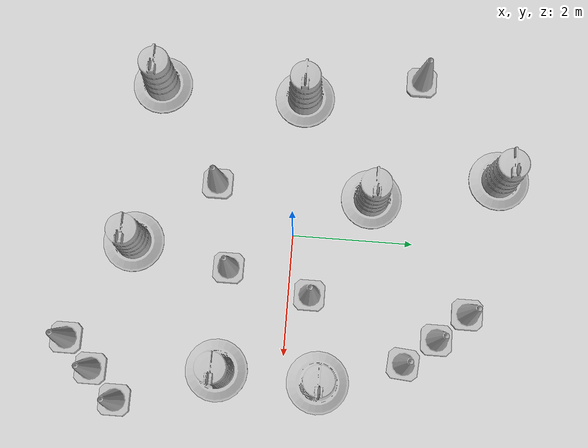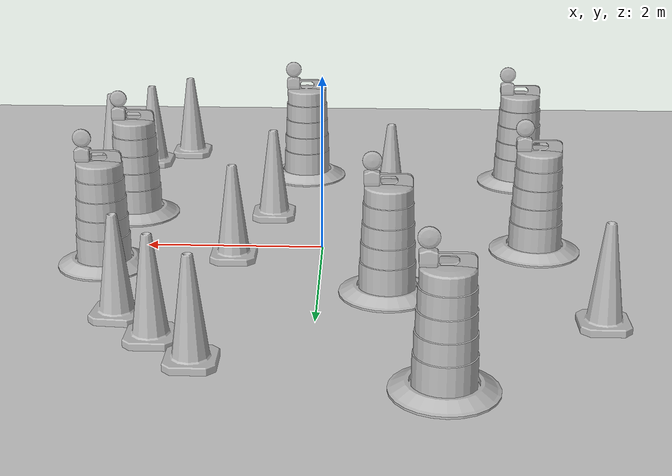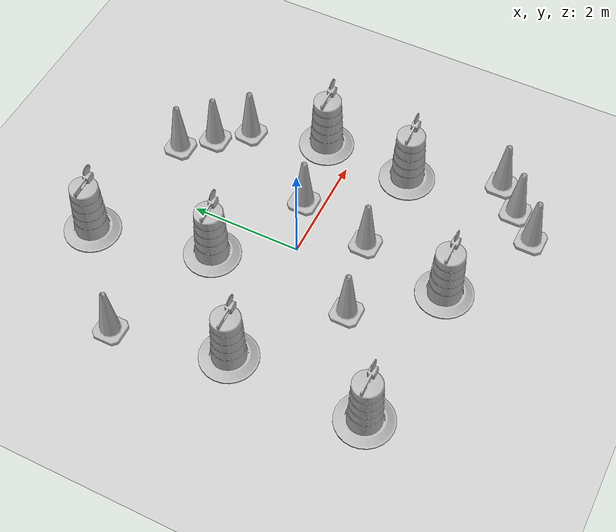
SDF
<sdf version="1.7">
 <world name="default">
  <light name="sun" type="directional">
   <pose>0 0 10 0 -0 0</pose>
   <diffuse>0.8 0.8 0.8 1</diffuse>
   <specular>0.2 0.2 0.2 1</specular>
   <attenuation>
    <range>1000</range>
    <constant>0.9</constant>
    <linear>0.01</linear>
    <quadratic>0.001</quadratic>
   </attenuation>
   <direction>-0.5 0.1 -0.9</direction>
   <spot><inner_angle>0</inner_angle><outer_angle>0</outer_angle><falloff>0</falloff></spot>
  </light>
  <model name="ground_plane">
   <static>1</static>
   <link name="link">
    <collision name="collision">
     <geometry><plane><normal>0 0 1</normal><size>100 100</size></plane></geometry>
     <surface>
      <contact><collide_bitmask>65535</collide_bitmask></contact>
      <friction><ode><mu>100</mu><mu2>50</mu2></ode></friction>
     </surface>
    </collision>
    <visual name="visual">
     <cast_shadows>0</cast_shadows>
     <geometry><plane><normal>0 0 1</normal><size>100 100</size></plane></geometry>
     <material>
      <script><uri>file://media/materials/scripts/gazebo.material</uri><name>Gazebo/Grey</name></script>
     </material>
    </visual>
   </link>
  </model>
  <gravity>0 0 -9.8</gravity>
  <magnetic_field>6e-06 2.3e-05 -4.2e-05</magnetic_field>
  <atmosphere type="adiabatic"/>
  <physics type="ode">
   <max_step_size>0.001</max_step_size>
   <real_time_factor>1</real_time_factor>
   <real_time_update_rate>1000</real_time_update_rate>
  </physics>
  <scene><ambient>0.4 0.4 0.4 1</ambient><background>0.7 0.7 0.7 1</background><shadows>1</shadows></scene>
  <audio><device>default</device></audio>
  <spherical_coordinates>
   <surface_model>EARTH_WGS84</surface_model>
   <latitude_deg>0</latitude_deg>
   <longitude_deg>0</longitude_deg>
   <elevation>0</elevation>
   <heading_deg>0</heading_deg>
  </spherical_coordinates>
  <model name="Construction Cone">
   <link name="link">
    <collision name="collision">
     <geometry>
      <mesh><scale>10 10 10</scale><uri>model://construction_cone/meshes/construction_cone.dae</uri></mesh>
     </geometry>
    </collision>
    <visual name="visual">
     <geometry>
      <mesh><scale>10 10 10</scale><uri>model://construction_cone/meshes/construction_cone.dae</uri></mesh>
     </geometry>
    </visual>
    <inertial>
     <inertia><ixx>1</ixx><ixy>0</ixy><ixz>0</ixz><iyy>1</iyy><iyz>0</iyz><izz>1</izz></inertia>
     <mass>1</mass>
    </inertial>
   </link>
   <pose>1.98583 1.94841 -0 0 0 -0.086739</pose>
  </model>
  <model name="Construction Barrel">
   <link name="link">
    <inertial>
     <pose>0 0 0.4 0 -0 0</pose>
     <mass>500</mass>
     <inertia><ixx>51.2096</ixx><iyy>51.2096</iyy><izz>25</izz><ixy>0</ixy><ixz>0</ixz><iyz>0</iyz></inertia>
    </inertial>
    <collision name="collision">
     <geometry><mesh><uri>model://construction_barrel/meshes/construction_barrel.dae</uri></mesh></geometry>
    </collision>
    <visual name="visual">
     <geometry><mesh><uri>model://construction_barrel/meshes/construction_barrel.dae</uri></mesh></geometry>
    </visual>
   </link>
   <pose>2.31131 -1.06782 -1e-06 3e-06 7e-06 -3.1e-05</pose>
  </model>
  <model name="Construction Barrel_0">
   <link name="link">
    <inertial>
     <pose>0 0 0.4 0 -0 0</pose>
     <mass>500</mass>
     <inertia><ixx>51.2096</ixx><iyy>51.2096</iyy><izz>25</izz><ixy>0</ixy><ixz>0</ixz><iyz>0</iyz></inertia>
    </inertial>
    <collision name="collision">
     <geometry><mesh><uri>model://construction_barrel/meshes/construction_barrel.dae</uri></mesh></geometry>
    </collision>
    <visual name="visual">
     <geometry><mesh><uri>model://construction_barrel/meshes/construction_barrel.dae</uri></mesh></geometry>
    </visual>
   </link>
   <pose>0.300751 -2.64057 -0 0 0 -2.3e-05</pose>
  </model>
  <model name="Construction Barrel_1">
   <link name="link">
    <inertial>
     <pose>0 0 0.4 0 -0 0</pose>
     <mass>500</mass>
     <inertia><ixx>51.2096</ixx><iyy>51.2096</iyy><izz>25</izz><ixy>0</ixy><ixz>0</ixz><iyz>0</iyz></inertia>
    </inertial>
    <collision name="collision">
     <geometry><mesh><uri>model://construction_barrel/meshes/construction_barrel.dae</uri></mesh></geometry>
    </collision>
    <visual name="visual">
     <geometry><mesh><uri>model://construction_barrel/meshes/construction_barrel.dae</uri></mesh></geometry>
    </visual>
   </link>
   <pose>-0.723548 1.27169 -2e-06 7e-06 -4e-06 -2.1e-05</pose>
  </model>
  <model name="Construction Cone_0">
   <link name="link">
    <collision name="collision">
     <geometry>
      <mesh><scale>10 10 10</scale><uri>model://construction_cone/meshes/construction_cone.dae</uri></mesh>
     </geometry>
    </collision>
    <visual name="visual">
     <geometry>
      <mesh><scale>10 10 10</scale><uri>model://construction_cone/meshes/construction_cone.dae</uri></mesh>
     </geometry>
    </visual>
    <inertial>
     <inertia><ixx>1</ixx><ixy>0</ixy><ixz>0</ixz><iyy>1</iyy><iyz>0</iyz><izz>1</izz></inertia>
     <mass>1</mass>
    </inertial>
   </link>
   <pose>1.55671 2.46986 -0 0 -1e-06 0</pose>
  </model>
  <model name="Construction Cone_1">
   <link name="link">
    <collision name="collision">
     <geometry>
      <mesh><scale>10 10 10</scale><uri>model://construction_cone/meshes/construction_cone.dae</uri></mesh>
     </geometry>
    </collision>
    <visual name="visual">
     <geometry>
      <mesh><scale>10 10 10</scale><uri>model://construction_cone/meshes/construction_cone.dae</uri></mesh>
     </geometry>
    </visual>
    <inertial>
     <inertia><ixx>1</ixx><ixy>0</ixy><ixz>0</ixz><iyy>1</iyy><iyz>0</iyz><izz>1</izz></inertia>
     <mass>1</mass>
    </inertial>
   </link>
   <pose>1.10408 2.95454 -0 0 -0 0</pose>
  </model>
  <model name="Construction Cone_2">
   <link name="link">
    <collision name="collision">
     <geometry>
      <mesh><scale>10 10 10</scale><uri>model://construction_cone/meshes/construction_cone.dae</uri></mesh>
     </geometry>
    </collision>
    <visual name="visual">
     <geometry>
      <mesh><scale>10 10 10</scale><uri>model://construction_cone/meshes/construction_cone.dae</uri></mesh>
     </geometry>
    </visual>
    <inertial>
     <inertia><ixx>1</ixx><ixy>0</ixy><ixz>0</ixz><iyy>1</iyy><iyz>0</iyz><izz>1</izz></inertia>
     <mass>1</mass>
    </inertial>
   </link>
   <pose>-0.792007 -1.32829 -0 0 -0 0</pose>
  </model>
  <model name="Construction Cone_3">
   <link name="link">
    <collision name="collision">
     <geometry>
      <mesh><scale>10 10 10</scale><uri>model://construction_cone/meshes/construction_cone.dae</uri></mesh>
     </geometry>
    </collision>
    <visual name="visual">
     <geometry>
      <mesh><scale>10 10 10</scale><uri>model://construction_cone/meshes/construction_cone.dae</uri></mesh>
     </geometry>
    </visual>
    <inertial>
     <inertia><ixx>1</ixx><ixy>0</ixy><ixz>0</ixz><iyy>1</iyy><iyz>0</iyz><izz>1</izz></inertia>
     <mass>1</mass>
    </inertial>
   </link>
   <pose>0.979986 0.349583 -0 0 -0 0</pose>
  </model>
  <model name="Construction Barrel_2">
   <link name="link">
    <inertial>
     <pose>0 0 0.4 0 -0 0</pose>
     <mass>500</mass>
     <inertia><ixx>51.2096</ixx><iyy>51.2096</iyy><izz>25</izz><ixy>0</ixy><ixz>0</ixz><iyz>0</iyz></inertia>
    </inertial>
    <collision name="collision">
     <geometry><mesh><uri>model://construction_barrel/meshes/construction_barrel.dae</uri></mesh></geometry>
    </collision>
    <visual name="visual">
     <geometry><mesh><uri>model://construction_barrel/meshes/construction_barrel.dae</uri></mesh></geometry>
    </visual>
   </link>
   <pose>2.38693 0.584063 -3e-06 6e-06 1.1e-05 -1.8e-05</pose>
  </model>
  <model name="Construction Cone_4">
   <link name="link">
    <collision name="collision">
     <geometry>
      <mesh><scale>10 10 10</scale><uri>model://construction_cone/meshes/construction_cone.dae</uri></mesh>
     </geometry>
    </collision>
    <visual name="visual">
     <geometry>
      <mesh><scale>10 10 10</scale><uri>model://construction_cone/meshes/construction_cone.dae</uri></mesh>
     </geometry>
    </visual>
    <inertial>
     <inertia><ixx>1</ixx><ixy>0</ixy><ixz>0</ixz><iyy>1</iyy><iyz>0</iyz><izz>1</izz></inertia>
     <mass>1</mass>
    </inertial>
   </link>
   <pose>0.626704 -1.02122 -0 0 -0 0</pose>
  </model>
  <model name="Construction Barrel_3">
   <link name="link">
    <inertial>
     <pose>0 0 0.4 0 -0 0</pose>
     <mass>500</mass>
     <inertia><ixx>51.2096</ixx><iyy>51.2096</iyy><izz>25</izz><ixy>0</ixy><ixz>0</ixz><iyz>0</iyz></inertia>
    </inertial>
    <collision name="collision">
     <geometry><mesh><uri>model://construction_barrel/meshes/construction_barrel.dae</uri></mesh></geometry>
    </collision>
    <visual name="visual">
     <geometry><mesh><uri>model://construction_barrel/meshes/construction_barrel.dae</uri></mesh></geometry>
    </visual>
   </link>
   <pose>-2.40621 0.028744 1e-06 4e-06 2e-06 -1.6e-05</pose>
  </model>
  <model name="Construction Cone_5">
   <link name="link">
    <collision name="collision">
     <geometry>
      <mesh><scale>10 10 10</scale><uri>model://construction_cone/meshes/construction_cone.dae</uri></mesh>
     </geometry>
    </collision>
    <visual name="visual">
     <geometry>
      <mesh><scale>10 10 10</scale><uri>model://construction_cone/meshes/construction_cone.dae</uri></mesh>
     </geometry>
    </visual>
    <inertial>
     <inertia><ixx>1</ixx><ixy>0</ixy><ixz>0</ixz><iyy>1</iyy><iyz>0</iyz><izz>1</izz></inertia>
     <mass>1</mass>
    </inertial>
   </link>
   <pose>1.97205 -3.56511 -0 0 -1e-06 0</pose>
  </model>
  <model name="Construction Cone_6">
   <link name="link">
    <collision name="collision">
     <geometry>
      <mesh><scale>10 10 10</scale><uri>model://construction_cone/meshes/construction_cone.dae</uri></mesh>
     </geometry>
    </collision>
    <visual name="visual">
     <geometry>
      <mesh><scale>10 10 10</scale><uri>model://construction_cone/meshes/construction_cone.dae</uri></mesh>
     </geometry>
    </visual>
    <inertial>
     <inertia><ixx>1</ixx><ixy>0</ixy><ixz>0</ixz><iyy>1</iyy><iyz>0</iyz><izz>1</izz></inertia>
     <mass>1</mass>
    </inertial>
   </link>
   <pose>2.43699 -3.10749 -0 0 -1e-06 0</pose>
  </model>
  <model name="Construction Cone_7">
   <link name="link">
    <collision name="collision">
     <geometry>
      <mesh><scale>10 10 10</scale><uri>model://construction_cone/meshes/construction_cone.dae</uri></mesh>
     </geometry>
    </collision>
    <visual name="visual">
     <geometry>
      <mesh><scale>10 10 10</scale><uri>model://construction_cone/meshes/construction_cone.dae</uri></mesh>
     </geometry>
    </visual>
    <inertial>
     <inertia><ixx>1</ixx><ixy>0</ixy><ixz>0</ixz><iyy>1</iyy><iyz>0</iyz><izz>1</izz></inertia>
     <mass>1</mass>
    </inertial>
   </link>
   <pose>2.90602 -2.66551 -0 0 -1e-06 0</pose>
  </model>
  <model name="Construction Barrel_4">
   <link name="link">
    <inertial>
     <pose>0 0 0.4 0 -0 0</pose>
     <mass>500</mass>
     <inertia><ixx>51.2096</ixx><iyy>51.2096</iyy><izz>25</izz><ixy>0</ixy><ixz>0</ixz><iyz>0</iyz></inertia>
    </inertial>
    <collision name="collision">
     <geometry><mesh><uri>model://construction_barrel/meshes/construction_barrel.dae</uri></mesh></geometry>
    </collision>
    <visual name="visual">
     <geometry><mesh><uri>model://construction_barrel/meshes/construction_barrel.dae</uri></mesh></geometry>
    </visual>
   </link>
   <pose>-1.20359 3.40474 -0 3e-06 -1e-06 -8e-06</pose>
  </model>
  <model name="Construction Cone_8">
   <link name="link">
    <collision name="collision">
     <geometry>
      <mesh><scale>10 10 10</scale><uri>model://construction_cone/meshes/construction_cone.dae</uri></mesh>
     </geometry>
    </collision>
    <visual name="visual">
     <geometry>
      <mesh><scale>10 10 10</scale><uri>model://construction_cone/meshes/construction_cone.dae</uri></mesh>
     </geometry>
    </visual>
    <inertial>
     <inertia><ixx>1</ixx><ixy>0</ixy><ixz>0</ixz><iyy>1</iyy><iyz>0</iyz><izz>1</izz></inertia>
     <mass>1</mass>
    </inertial>
   </link>
   <pose>-2.84484 2.01851 -0 0 -0 0</pose>
  </model>
  <model name="Construction Barrel_5">
   <link name="link">
    <inertial>
     <pose>0 0 0.4 0 -0 0</pose>
     <mass>500</mass>
     <inertia><ixx>51.2096</ixx><iyy>51.2096</iyy><izz>25</izz><ixy>0</ixy><ixz>0</ixz><iyz>0</iyz></inertia>
    </inertial>
    <collision name="collision">
     <geometry><mesh><uri>model://construction_barrel/meshes/construction_barrel.dae</uri></mesh></geometry>
    </collision>
    <visual name="visual">
     <geometry><mesh><uri>model://construction_barrel/meshes/construction_barrel.dae</uri></mesh></geometry>
    </visual>
   </link>
   <pose>-2.4709 -2.43757 -0 1e-06 -1e-06 -4e-06</pose>
  </model>
 </world>
</sdf>
